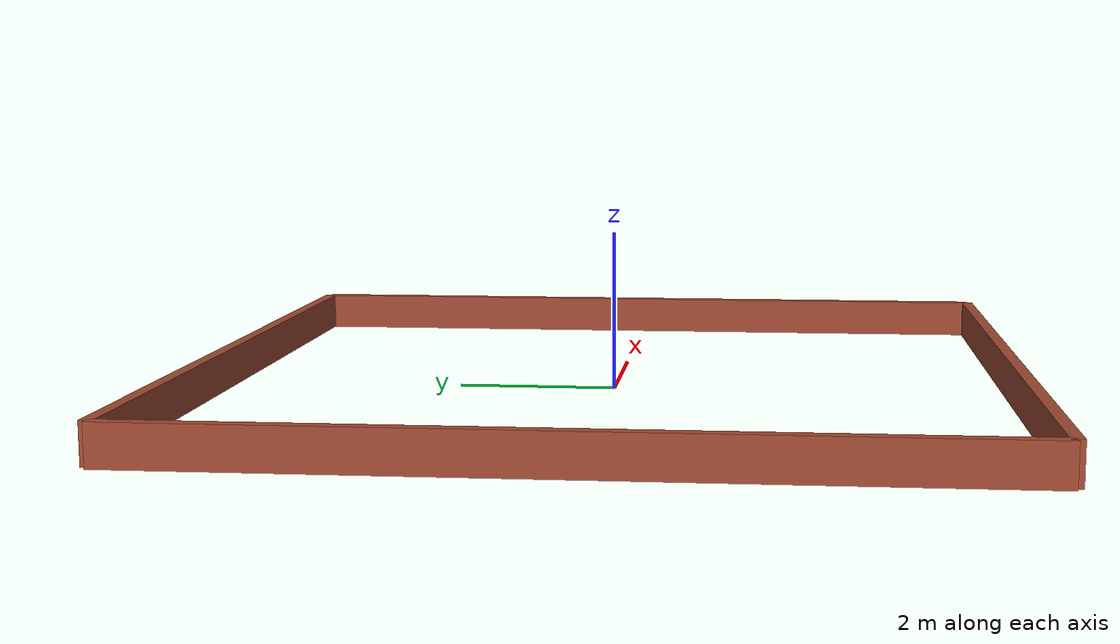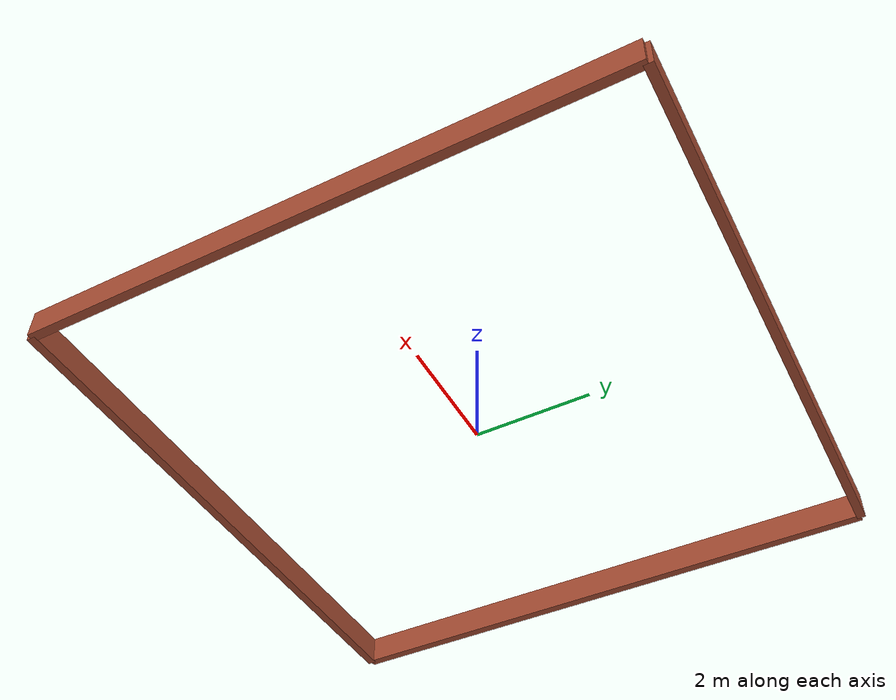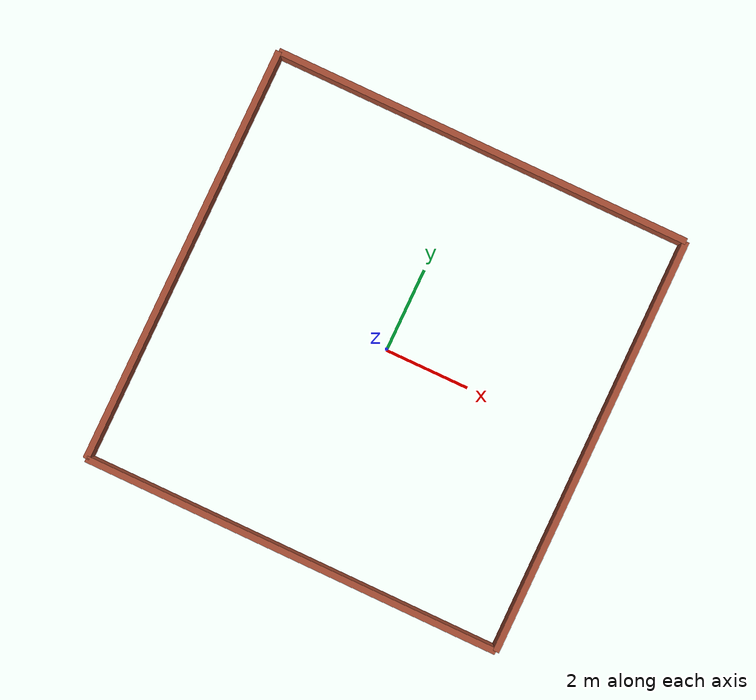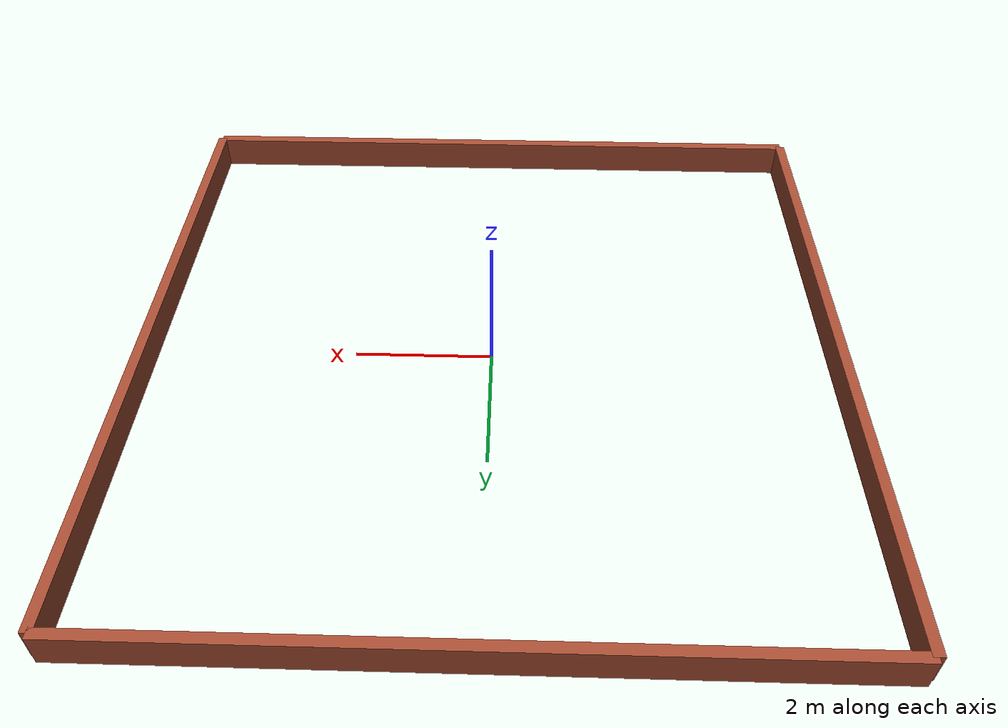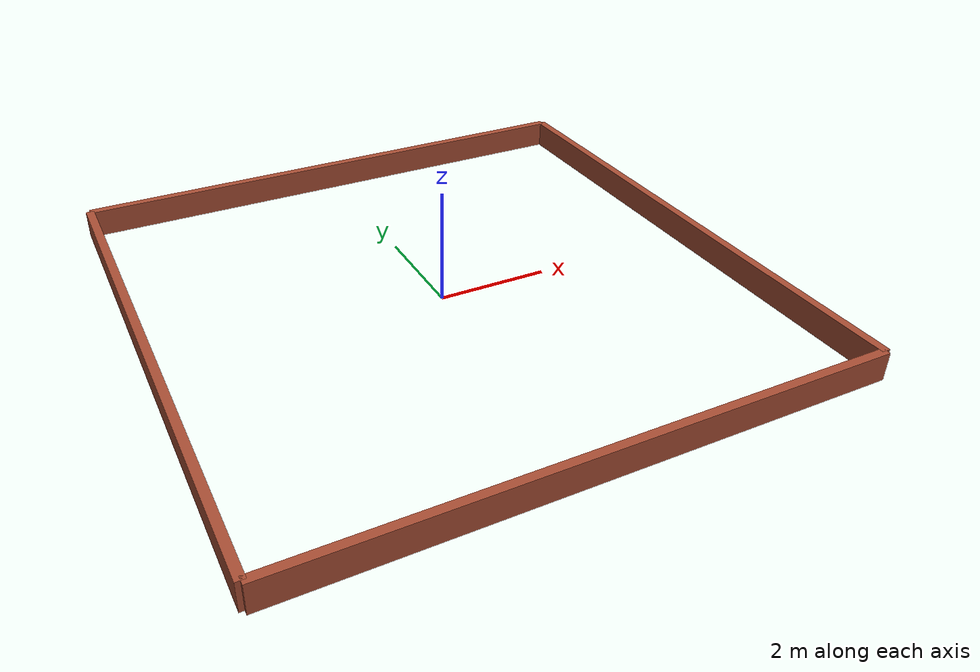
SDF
<?xml version='1.0'?>
<sdf version='1.6'>
  <model name='flocking_square'>
    <pose frame=''>0 0 0 0 -0 0</pose>

    <!-- changed all material into Bricks & size/pose of the wall -->

    <!-- North side -->
    <link name='Wall_0'>
      <!-- collision definition as box -->
      <collision name='Wall_0_Collision'>
        <geometry>
          <box>
            <size>10 0.15 0.5</size>
          </box>
        </geometry>
        <pose frame=''>0 0 0.25 0 -0 0</pose>
      </collision>
      <!-- collision definition as box -->
      <visual name='Wall_0_Visual'>
        <pose frame=''>0 0 0.25 0 -0 0</pose>
        <geometry>
          <box>
            <size>10 0.15 0.5</size>
          </box>
        </geometry>
        <material>
          <script>
            <uri>file://media/materials/scripts/gazebo.material</uri>
            <name>Gazebo/Bricks</name>
          </script>
          <ambient>1 1 1 1</ambient>
        </material>
      </visual>
      <pose frame=''>0 5 0 0 -0 0</pose>
    </link>

    <!-- West side -->
    <link name='Wall_2'>
      <collision name='Wall_2_Collision'>
        <geometry>
          <box>
            <size>10 0.15 0.5</size>
          </box>
        </geometry>
        <pose frame=''>0 0 0.25 0 -0 0</pose>
      </collision>
      <visual name='Wall_2_Visual'>
        <pose frame=''>0 0 0.25 0 -0 0</pose>
        <geometry>
          <box>
            <size>10 0.15 0.5</size>
          </box>
        </geometry>
        <material>
          <script>
            <uri>file://media/materials/scripts/gazebo.material</uri>
            <name>Gazebo/Bricks</name>
          </script>
          <ambient>1 1 1 1</ambient>
        </material>
      </visual>
      <pose frame=''>-5 0 0 0 0 -1.5708</pose> <!-- rotation 90 degree -->
    </link>

    <!-- South side -->
    <link name='Wall_3'>
      <collision name='Wall_3_Collision'>
        <geometry>
          <box>
            <size>10 0.15 0.5</size>
          </box>
        </geometry>
        <pose frame=''>0 0 0.25 0 -0 0</pose>
      </collision>
      <visual name='Wall_3_Visual'>
        <pose frame=''>0 0 0.25 0 -0 0</pose>
        <geometry>
          <box>
            <size>10 0.15 0.5</size>
          </box>
        </geometry>
        <material>
          <script>
            <uri>file://media/materials/scripts/gazebo.material</uri>
            <name>Gazebo/Bricks</name>
          </script>
          <ambient>1 1 1 1</ambient>
        </material>
      </visual>
      <pose frame=''>0 -5 0 0 -0 0</pose>
    </link>

    <!-- East side -->
    <link name='Wall_4'>
      <collision name='Wall_4_Collision'>
        <geometry>
          <box>
            <size>10 0.15 0.5</size>
          </box>
        </geometry>
        <pose frame=''>0 0 0.25 0 -0 0</pose>
      </collision>
      <visual name='Wall_4_Visual'>
        <pose frame=''>0 0 0.25 0 -0 0</pose>
        <geometry>
          <box>
            <size>10 0.15 0.5</size>
          </box>
        </geometry>
        <material>
          <script>
            <uri>file://media/materials/scripts/gazebo.material</uri>
            <name>Gazebo/Bricks</name>
          </script>
          <ambient>1 1 1 1</ambient>
        </material>
      </visual>
      <pose frame=''>5 0 0 0 -0 1.5708</pose> <!-- rotation 90 degree -->
    </link>

    <static>1</static>
  </model>
</sdf>
